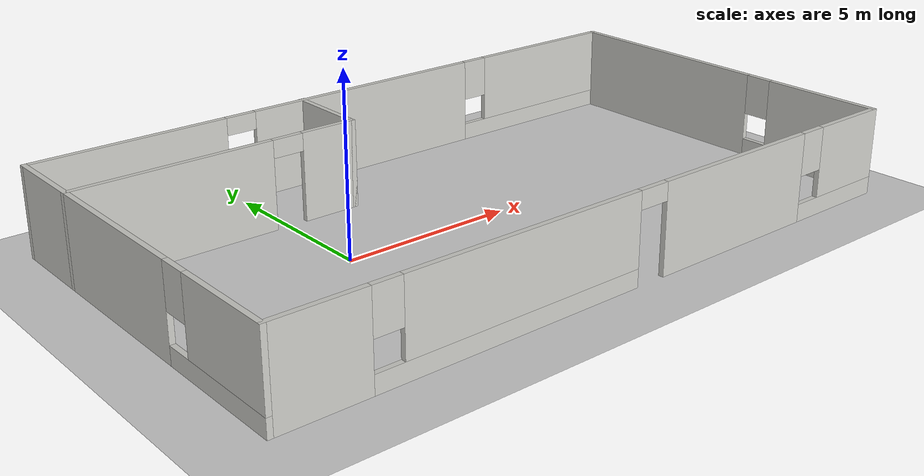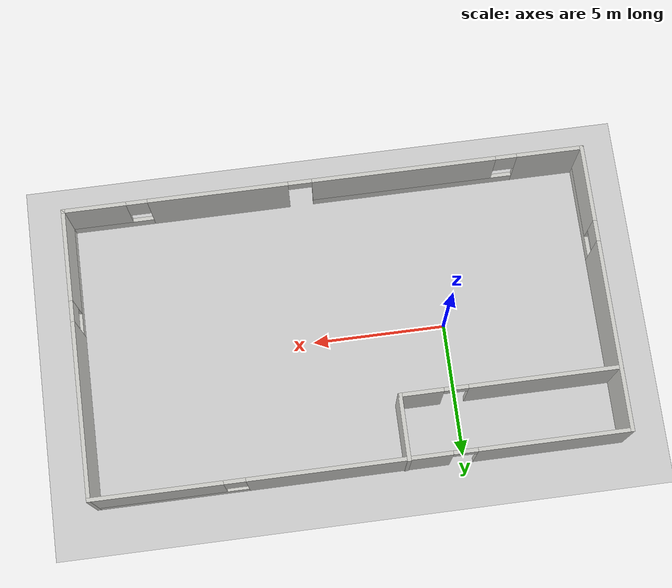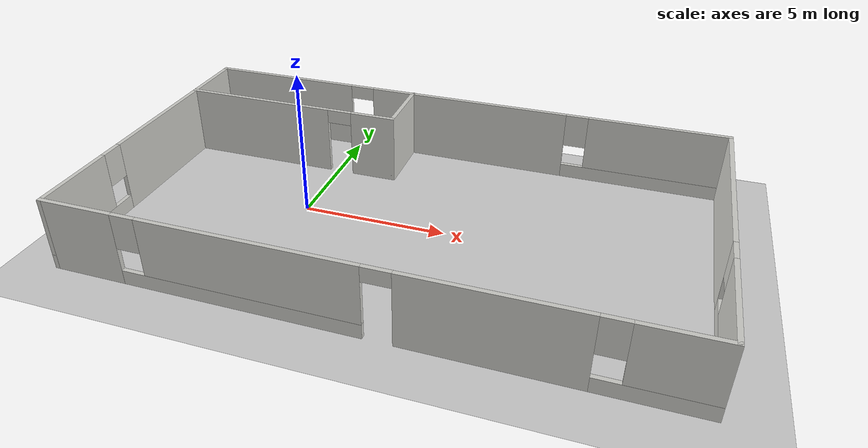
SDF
<sdf version="1.7">
 <world name="default">
  <light name="sun" type="directional">
   <pose>0 0 10 0 -0 0</pose>
   <diffuse>0.8 0.8 0.8 1</diffuse>
   <specular>0.2 0.2 0.2 1</specular>
   <attenuation>
    <range>1000</range>
    <constant>0.9</constant>
    <linear>0.01</linear>
    <quadratic>0.001</quadratic>
   </attenuation>
   <direction>-0.5 0.1 -0.9</direction>
   <spot><inner_angle>0</inner_angle><outer_angle>0</outer_angle><falloff>0</falloff></spot>
  </light>
  <model name="ground_plane">
   <static>1</static>
   <link name="link">
    <collision name="collision">
     <geometry><plane><normal>0 0 1</normal><size>100 100</size></plane></geometry>
     <surface><friction><ode><mu>100</mu><mu2>50</mu2></ode></friction></surface>
    </collision>
    <visual name="visual">
     <cast_shadows>0</cast_shadows>
     <geometry><plane><normal>0 0 1</normal><size>100 100</size></plane></geometry>
     <material>
      <script><uri>file://media/materials/scripts/gazebo.material</uri><name>Gazebo/Grey</name></script>
     </material>
    </visual>
   </link>
  </model>
  <gravity>0 0 -9.8</gravity>
  <magnetic_field>6e-06 2.3e-05 -4.2e-05</magnetic_field>
  <atmosphere type="adiabatic"/>
  <physics type="ode">
   <max_step_size>0.001</max_step_size>
   <real_time_factor>1</real_time_factor>
   <real_time_update_rate>1000</real_time_update_rate>
  </physics>
  <scene><ambient>0.4 0.4 0.4 1</ambient><background>0.7 0.7 0.7 1</background><shadows>1</shadows></scene>
  <audio><device>default</device></audio>
  <spherical_coordinates>
   <surface_model>EARTH_WGS84</surface_model>
   <latitude_deg>0</latitude_deg>
   <longitude_deg>0</longitude_deg>
   <elevation>0</elevation>
   <heading_deg>0</heading_deg>
  </spherical_coordinates>
  <model name="Test">
   <pose>3.87632 -0.19409 0 0 -0 0</pose>
   <link name="Wall_11">
    <pose>-5.75 3.0869 0 0 -0 0</pose>
    <visual name="Wall_11_Visual_0">
     <pose>-1.28845 0 1.25 0 -0 0</pose>
     <geometry><box><size>5.67311 0.15 2.5</size></box></geometry>
     <material>
      <script><uri>file://media/materials/scripts/gazebo.material</uri><name>Gazebo/CeilingTiled</name></script>
      <ambient>1 1 1 1</ambient>
     </material>
     <meta><layer>0</layer></meta>
    </visual>
    <collision name="Wall_11_Collision_0">
     <geometry><box><size>5.67311 0.15 2.5</size></box></geometry>
     <pose>-1.28845 0 1.25 0 -0 0</pose>
    </collision>
    <visual name="Wall_11_Visual_1">
     <pose>3.28655 0 1.25 0 -0 0</pose>
     <geometry><box><size>1.67689 0.15 2.5</size></box></geometry>
     <material>
      <script><uri>file://media/materials/scripts/gazebo.material</uri><name>Gazebo/CeilingTiled</name></script>
      <ambient>1 1 1 1</ambient>
     </material>
     <meta><layer>0</layer></meta>
    </visual>
    <collision name="Wall_11_Collision_1">
     <geometry><box><size>1.67689 0.15 2.5</size></box></geometry>
     <pose>3.28655 0 1.25 0 -0 0</pose>
    </collision>
    <visual name="Wall_11_Visual_2">
     <pose>1.99811 0 2.25 0 -0 0</pose>
     <geometry><box><size>0.9 0.15 0.5</size></box></geometry>
     <material>
      <script><uri>file://media/materials/scripts/gazebo.material</uri><name>Gazebo/CeilingTiled</name></script>
      <ambient>1 1 1 1</ambient>
     </material>
     <meta><layer>0</layer></meta>
    </visual>
    <collision name="Wall_11_Collision_2">
     <geometry><box><size>0.9 0.15 0.5</size></box></geometry>
     <pose>1.99811 0 2.25 0 -0 0</pose>
    </collision>
   </link>
   <link name="Wall_12">
    <collision name="Wall_12_Collision">
     <geometry><box><size>2.5 0.15 2.5</size></box></geometry>
     <pose>0 0 1.25 0 -0 0</pose>
    </collision>
    <visual name="Wall_12_Visual">
     <pose>0 0 1.25 0 -0 0</pose>
     <geometry><box><size>2.5 0.15 2.5</size></box></geometry>
     <material>
      <script><uri>file://media/materials/scripts/gazebo.material</uri><name>Gazebo/CeilingTiled</name></script>
      <ambient>1 1 1 1</ambient>
     </material>
     <meta><layer>0</layer></meta>
    </visual>
    <pose>-1.7 4.2619 0 0 -0 1.5708</pose>
   </link>
   <link name="Wall_5">
    <pose>-9.8 -0.011902 0 0 -0 -1.5708</pose>
    <visual name="Wall_5_Visual_0">
     <pose>-1.89406 0 1.25 0 -0 0</pose>
     <geometry><box><size>7.21187 0.15 2.5</size></box></geometry>
     <material>
      <script><uri>file://media/materials/scripts/gazebo.material</uri><name>Gazebo/CeilingTiled</name></script>
      <ambient>1 1 1 1</ambient>
     </material>
     <meta><layer>0</layer></meta>
    </visual>
    <collision name="Wall_5_Collision_0">
     <geometry><box><size>7.21187 0.15 2.5</size></box></geometry>
     <pose>-1.89406 0 1.25 0 -0 0</pose>
    </collision>
    <visual name="Wall_5_Visual_1">
     <pose>3.60594 0 0.25 0 -0 0</pose>
     <geometry><box><size>3.78813 0.15 0.5</size></box></geometry>
     <material>
      <script><uri>file://media/materials/scripts/gazebo.material</uri><name>Gazebo/CeilingTiled</name></script>
      <ambient>1 1 1 1</ambient>
     </material>
     <meta><layer>0</layer></meta>
    </visual>
    <collision name="Wall_5_Collision_1">
     <geometry><box><size>3.78813 0.15 0.5</size></box></geometry>
     <pose>3.60594 0 0.25 0 -0 0</pose>
    </collision>
    <visual name="Wall_5_Visual_2">
     <pose>4.00594 0 1.5 0 -0 0</pose>
     <geometry><box><size>2.98813 0.15 2</size></box></geometry>
     <material>
      <script><uri>file://media/materials/scripts/gazebo.material</uri><name>Gazebo/CeilingTiled</name></script>
      <ambient>1 1 1 1</ambient>
     </material>
     <meta><layer>0</layer></meta>
    </visual>
    <collision name="Wall_5_Collision_2">
     <geometry><box><size>2.98813 0.15 2</size></box></geometry>
     <pose>4.00594 0 1.5 0 -0 0</pose>
    </collision>
    <visual name="Wall_5_Visual_3">
     <pose>2.11187 0 1.9 0 -0 0</pose>
     <geometry><box><size>0.8 0.15 1.2</size></box></geometry>
     <material>
      <script><uri>file://media/materials/scripts/gazebo.material</uri><name>Gazebo/CeilingTiled</name></script>
      <ambient>1 1 1 1</ambient>
     </material>
     <meta><layer>0</layer></meta>
    </visual>
    <collision name="Wall_5_Collision_3">
     <geometry><box><size>0.8 0.15 1.2</size></box></geometry>
     <pose>2.11187 0 1.9 0 -0 0</pose>
    </collision>
   </link>
   <link name="Wall_6">
    <pose>0 -5.4369 0 0 -0 0</pose>
    <visual name="Wall_6_Visual_0">
     <pose>-8.59526 0 1.25 0 -0 0</pose>
     <geometry><box><size>2.55948 0.15 2.5</size></box></geometry>
     <material>
      <script><uri>file://media/materials/scripts/gazebo.material</uri><name>Gazebo/CeilingTiled</name></script>
      <ambient>1 1 1 1</ambient>
     </material>
     <meta><layer>0</layer></meta>
    </visual>
    <collision name="Wall_6_Collision_0">
     <geometry><box><size>2.55948 0.15 2.5</size></box></geometry>
     <pose>-8.59526 0 1.25 0 -0 0</pose>
    </collision>
    <visual name="Wall_6_Visual_1">
     <pose>3.99608 0 1.25 0 -0 0</pose>
     <geometry><box><size>5.29116 0.15 2.5</size></box></geometry>
     <material>
      <script><uri>file://media/materials/scripts/gazebo.material</uri><name>Gazebo/CeilingTiled</name></script>
      <ambient>1 1 1 1</ambient>
     </material>
     <meta><layer>0</layer></meta>
    </visual>
    <collision name="Wall_6_Collision_1">
     <geometry><box><size>5.29116 0.15 2.5</size></box></geometry>
     <pose>3.99608 0 1.25 0 -0 0</pose>
    </collision>
    <visual name="Wall_6_Visual_2">
     <pose>-3.43251 0 0.25 0 -0 0</pose>
     <geometry><box><size>7.76602 0.15 0.5</size></box></geometry>
     <material>
      <script><uri>file://media/materials/scripts/gazebo.material</uri><name>Gazebo/CeilingTiled</name></script>
      <ambient>1 1 1 1</ambient>
     </material>
     <meta><layer>0</layer></meta>
    </visual>
    <collision name="Wall_6_Collision_2">
     <geometry><box><size>7.76602 0.15 0.5</size></box></geometry>
     <pose>-3.43251 0 0.25 0 -0 0</pose>
    </collision>
    <visual name="Wall_6_Visual_3">
     <pose>8.25833 0 0.25 0 -0 0</pose>
     <geometry><box><size>3.23334 0.15 0.5</size></box></geometry>
     <material>
      <script><uri>file://media/materials/scripts/gazebo.material</uri><name>Gazebo/CeilingTiled</name></script>
      <ambient>1 1 1 1</ambient>
     </material>
     <meta><layer>0</layer></meta>
    </visual>
    <collision name="Wall_6_Collision_3">
     <geometry><box><size>3.23334 0.15 0.5</size></box></geometry>
     <pose>8.25833 0 0.25 0 -0 0</pose>
    </collision>
    <visual name="Wall_6_Visual_4">
     <pose>-3.03251 0 1.5 0 -0 0</pose>
     <geometry><box><size>6.96602 0.15 2</size></box></geometry>
     <material>
      <script><uri>file://media/materials/scripts/gazebo.material</uri><name>Gazebo/CeilingTiled</name></script>
      <ambient>1 1 1 1</ambient>
     </material>
     <meta><layer>0</layer></meta>
    </visual>
    <collision name="Wall_6_Collision_4">
     <geometry><box><size>6.96602 0.15 2</size></box></geometry>
     <pose>-3.03251 0 1.5 0 -0 0</pose>
    </collision>
    <visual name="Wall_6_Visual_5">
     <pose>-3.03251 0 1.5 0 -0 0</pose>
     <geometry><box><size>6.96602 0.15 2</size></box></geometry>
     <material>
      <script><uri>file://media/materials/scripts/gazebo.material</uri><name>Gazebo/CeilingTiled</name></script>
      <ambient>1 1 1 1</ambient>
     </material>
     <meta><layer>0</layer></meta>
    </visual>
    <collision name="Wall_6_Collision_5">
     <geometry><box><size>6.96602 0.15 2</size></box></geometry>
     <pose>-3.03251 0 1.5 0 -0 0</pose>
    </collision>
    <visual name="Wall_6_Visual_6">
     <pose>8.65833 0 1.5 0 -0 0</pose>
     <geometry><box><size>2.43334 0.15 2</size></box></geometry>
     <material>
      <script><uri>file://media/materials/scripts/gazebo.material</uri><name>Gazebo/CeilingTiled</name></script>
      <ambient>1 1 1 1</ambient>
     </material>
     <meta><layer>0</layer></meta>
    </visual>
    <collision name="Wall_6_Collision_6">
     <geometry><box><size>2.43334 0.15 2</size></box></geometry>
     <pose>8.65833 0 1.5 0 -0 0</pose>
    </collision>
    <visual name="Wall_6_Visual_7">
     <pose>-6.91552 0 1.9 0 -0 0</pose>
     <geometry><box><size>0.8 0.15 1.2</size></box></geometry>
     <material>
      <script><uri>file://media/materials/scripts/gazebo.material</uri><name>Gazebo/CeilingTiled</name></script>
      <ambient>1 1 1 1</ambient>
     </material>
     <meta><layer>0</layer></meta>
    </visual>
    <collision name="Wall_6_Collision_7">
     <geometry><box><size>0.8 0.15 1.2</size></box></geometry>
     <pose>-6.91552 0 1.9 0 -0 0</pose>
    </collision>
    <visual name="Wall_6_Visual_8">
     <pose>7.04166 0 1.9 0 -0 0</pose>
     <geometry><box><size>0.8 0.15 1.2</size></box></geometry>
     <material>
      <script><uri>file://media/materials/scripts/gazebo.material</uri><name>Gazebo/CeilingTiled</name></script>
      <ambient>1 1 1 1</ambient>
     </material>
     <meta><layer>0</layer></meta>
    </visual>
    <collision name="Wall_6_Collision_8">
     <geometry><box><size>0.8 0.15 1.2</size></box></geometry>
     <pose>7.04166 0 1.9 0 -0 0</pose>
    </collision>
    <visual name="Wall_6_Visual_9">
     <pose>0.9005 0 2.25 0 -0 0</pose>
     <geometry><box><size>0.9 0.15 0.5</size></box></geometry>
     <material>
      <script><uri>file://media/materials/scripts/gazebo.material</uri><name>Gazebo/CeilingTiled</name></script>
      <ambient>1 1 1 1</ambient>
     </material>
     <meta><layer>0</layer></meta>
    </visual>
    <collision name="Wall_6_Collision_9">
     <geometry><box><size>0.9 0.15 0.5</size></box></geometry>
     <pose>0.9005 0 2.25 0 -0 0</pose>
    </collision>
    <visual name="Wall_6_Visual_10">
     <pose>0.9005 0 2.25 0 -0 0</pose>
     <geometry><box><size>0.9 0.15 0.5</size></box></geometry>
     <material>
      <script><uri>file://media/materials/scripts/gazebo.material</uri><name>Gazebo/CeilingTiled</name></script>
      <ambient>1 1 1 1</ambient>
     </material>
     <meta><layer>0</layer></meta>
    </visual>
    <collision name="Wall_6_Collision_10">
     <geometry><box><size>0.9 0.15 0.5</size></box></geometry>
     <pose>0.9005 0 2.25 0 -0 0</pose>
    </collision>
   </link>
   <link name="Wall_8">
    <pose>0 5.4131 0 0 -0 0</pose>
    <visual name="Wall_8_Visual_0">
     <pose>-7.03845 0 1.25 0 -0 0</pose>
     <geometry><box><size>5.67311 0.15 2.5</size></box></geometry>
     <material>
      <script><uri>file://media/materials/scripts/gazebo.material</uri><name>Gazebo/CeilingTiled</name></script>
      <ambient>1 1 1 1</ambient>
     </material>
     <meta><layer>0</layer></meta>
    </visual>
    <collision name="Wall_8_Collision_0">
     <geometry><box><size>5.67311 0.15 2.5</size></box></geometry>
     <pose>-7.03845 0 1.25 0 -0 0</pose>
    </collision>
    <visual name="Wall_8_Visual_1">
     <pose>0.436999 0 1.25 0 -0 0</pose>
     <geometry><box><size>7.47778 0.15 2.5</size></box></geometry>
     <material>
      <script><uri>file://media/materials/scripts/gazebo.material</uri><name>Gazebo/CeilingTiled</name></script>
      <ambient>1 1 1 1</ambient>
     </material>
     <meta><layer>0</layer></meta>
    </visual>
    <collision name="Wall_8_Collision_1">
     <geometry><box><size>7.47778 0.15 2.5</size></box></geometry>
     <pose>0.436999 0 1.25 0 -0 0</pose>
    </collision>
    <visual name="Wall_8_Visual_2">
     <pose>7.02545 0 0.25 0 -0 0</pose>
     <geometry><box><size>5.69911 0.15 0.5</size></box></geometry>
     <material>
      <script><uri>file://media/materials/scripts/gazebo.material</uri><name>Gazebo/CeilingTiled</name></script>
      <ambient>1 1 1 1</ambient>
     </material>
     <meta><layer>0</layer></meta>
    </visual>
    <collision name="Wall_8_Collision_2">
     <geometry><box><size>5.69911 0.15 0.5</size></box></geometry>
     <pose>7.02545 0 0.25 0 -0 0</pose>
    </collision>
    <visual name="Wall_8_Visual_3">
     <pose>7.42544 0 1.5 0 -0 0</pose>
     <geometry><box><size>4.89911 0.15 2</size></box></geometry>
     <material>
      <script><uri>file://media/materials/scripts/gazebo.material</uri><name>Gazebo/CeilingTiled</name></script>
      <ambient>1 1 1 1</ambient>
     </material>
     <meta><layer>0</layer></meta>
    </visual>
    <collision name="Wall_8_Collision_3">
     <geometry><box><size>4.89911 0.15 2</size></box></geometry>
     <pose>7.42544 0 1.5 0 -0 0</pose>
    </collision>
    <visual name="Wall_8_Visual_4">
     <pose>4.57589 0 1.9 0 -0 0</pose>
     <geometry><box><size>0.8 0.15 1.2</size></box></geometry>
     <material>
      <script><uri>file://media/materials/scripts/gazebo.material</uri><name>Gazebo/CeilingTiled</name></script>
      <ambient>1 1 1 1</ambient>
     </material>
     <meta><layer>0</layer></meta>
    </visual>
    <collision name="Wall_8_Collision_4">
     <geometry><box><size>0.8 0.15 1.2</size></box></geometry>
     <pose>4.57589 0 1.9 0 -0 0</pose>
    </collision>
    <visual name="Wall_8_Visual_5">
     <pose>-3.75189 0 2.25 0 -0 0</pose>
     <geometry><box><size>0.9 0.15 0.5</size></box></geometry>
     <material>
      <script><uri>file://media/materials/scripts/gazebo.material</uri><name>Gazebo/CeilingTiled</name></script>
      <ambient>1 1 1 1</ambient>
     </material>
     <meta><layer>0</layer></meta>
    </visual>
    <collision name="Wall_8_Collision_5">
     <geometry><box><size>0.9 0.15 0.5</size></box></geometry>
     <pose>-3.75189 0 2.25 0 -0 0</pose>
    </collision>
   </link>
   <link name="Wall_9">
    <pose>9.8 -0.011902 0 0 -0 -1.5708</pose>
    <visual name="Wall_9_Visual_0">
     <pose>-2.17321 0 1.25 0 -0 0</pose>
     <geometry><box><size>6.65359 0.15 2.5</size></box></geometry>
     <material>
      <script><uri>file://media/materials/scripts/gazebo.material</uri><name>Gazebo/CeilingTiled</name></script>
      <ambient>1 1 1 1</ambient>
     </material>
     <meta><layer>0</layer></meta>
    </visual>
    <collision name="Wall_9_Collision_0">
     <geometry><box><size>6.65359 0.15 2.5</size></box></geometry>
     <pose>-2.17321 0 1.25 0 -0 0</pose>
    </collision>
    <visual name="Wall_9_Visual_1">
     <pose>3.32679 0 0.25 0 -0 0</pose>
     <geometry><box><size>4.34641 0.15 0.5</size></box></geometry>
     <material>
      <script><uri>file://media/materials/scripts/gazebo.material</uri><name>Gazebo/CeilingTiled</name></script>
      <ambient>1 1 1 1</ambient>
     </material>
     <meta><layer>0</layer></meta>
    </visual>
    <collision name="Wall_9_Collision_1">
     <geometry><box><size>4.34641 0.15 0.5</size></box></geometry>
     <pose>3.32679 0 0.25 0 -0 0</pose>
    </collision>
    <visual name="Wall_9_Visual_2">
     <pose>3.72679 0 1.5 0 -0 0</pose>
     <geometry><box><size>3.54641 0.15 2</size></box></geometry>
     <material>
      <script><uri>file://media/materials/scripts/gazebo.material</uri><name>Gazebo/CeilingTiled</name></script>
      <ambient>1 1 1 1</ambient>
     </material>
     <meta><layer>0</layer></meta>
    </visual>
    <collision name="Wall_9_Collision_2">
     <geometry><box><size>3.54641 0.15 2</size></box></geometry>
     <pose>3.72679 0 1.5 0 -0 0</pose>
    </collision>
    <visual name="Wall_9_Visual_3">
     <pose>1.55359 0 1.9 0 -0 0</pose>
     <geometry><box><size>0.8 0.15 1.2</size></box></geometry>
     <material>
      <script><uri>file://media/materials/scripts/gazebo.material</uri><name>Gazebo/CeilingTiled</name></script>
      <ambient>1 1 1 1</ambient>
     </material>
     <meta><layer>0</layer></meta>
    </visual>
    <collision name="Wall_9_Collision_3">
     <geometry><box><size>0.8 0.15 1.2</size></box></geometry>
     <pose>1.55359 0 1.9 0 -0 0</pose>
    </collision>
   </link>
   <static>1</static>
  </model>
 </world>
</sdf>
